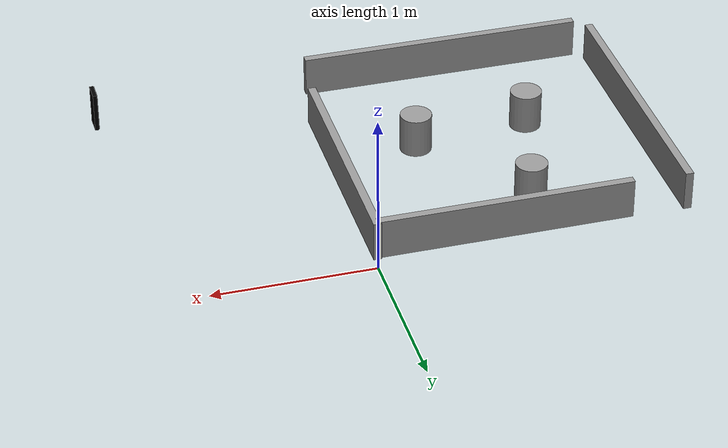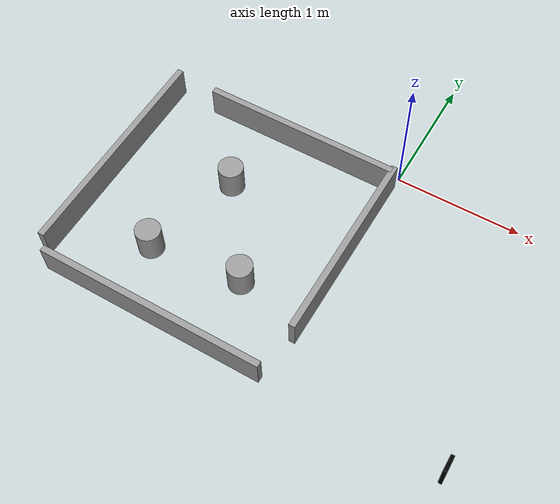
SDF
<sdf version="1.9">
 <world name="default">
  <include><uri>model://turtlebot3_autorace_2020/traffic_light</uri><pose>1.3 -1.95 0 0 0 -1.57</pose></include>
  <model name="tunnel_wall">
   <link name="Wall_1">
    <pose>-0.980783 0.049883 0 0 -0 1.5708</pose>
    <visual name="Wall_1_Visual">
     <pose>0 0 0.125 0 -0 0</pose>
     <geometry><box><size>1.8 0.05 0.25</size></box></geometry>
     <material>
      <script><uri>file://media/materials/scripts/gazebo.material</uri><name>Gazebo/Grey</name></script>
      <ambient>1 1 1 1</ambient>
      <diffuse>0.7 0.7 0.7 1</diffuse>
      <specular>0.01 0.01 0.01 1</specular>
      <emissive>0 0 0 1</emissive>
     </material>
    </visual>
    <collision name="Wall_1_Collision">
     <pose>0 0 0.125 0 -0 0</pose>
     <geometry><box><size>1.8 0.05 0.25</size></box></geometry>
     <surface>
      <friction>
       <ode><mu>1</mu><mu2>1</mu2><fdir1>0 0 0</fdir1><slip1>0</slip1><slip2>0</slip2></ode>
       <torsional>
        <coefficient>1</coefficient>
        <patch_radius>0</patch_radius>
        <surface_radius>0</surface_radius>
        <use_patch_radius>1</use_patch_radius>
        <ode><slip>0</slip></ode>
       </torsional>
      </friction>
      <bounce><restitution_coefficient>0</restitution_coefficient><threshold>1e+06</threshold></bounce>
      <contact>
       <collide_without_contact>0</collide_without_contact>
       <collide_without_contact_bitmask>1</collide_without_contact_bitmask>
       <collide_bitmask>1</collide_bitmask>
       <ode>
        <soft_cfm>0</soft_cfm>
        <soft_erp>0.2</soft_erp>
        <kp>1e+13</kp>
        <kd>1</kd>
        <max_vel>0.01</max_vel>
        <min_depth>0</min_depth>
       </ode>
       <bullet>
        <split_impulse>1</split_impulse>
        <split_impulse_penetration_threshold>-0.01</split_impulse_penetration_threshold>
        <soft_cfm>0</soft_cfm>
        <soft_erp>0.2</soft_erp>
        <kp>1e+13</kp>
        <kd>1</kd>
       </bullet>
      </contact>
     </surface>
    </collision>
   </link>
   <link name="Wall_2">
    <pose>0 -0.935438 0 0 -0 0</pose>
    <visual name="Wall_2_Visual">
     <pose>0 0 0.125 0 -0 0</pose>
     <geometry><box><size>1.8 0.05 0.25</size></box></geometry>
     <material>
      <script><uri>file://media/materials/scripts/gazebo.material</uri><name>Gazebo/Grey</name></script>
      <ambient>1 1 1 1</ambient>
      <diffuse>0.7 0.7 0.7 1</diffuse>
      <specular>0.01 0.01 0.01 1</specular>
      <emissive>0 0 0 1</emissive>
     </material>
    </visual>
    <collision name="Wall_2_Collision">
     <pose>0 0 0.125 0 -0 0</pose>
     <geometry><box><size>1.8 0.05 0.25</size></box></geometry>
     <surface>
      <friction>
       <ode><mu>1</mu><mu2>1</mu2><fdir1>0 0 0</fdir1><slip1>0</slip1><slip2>0</slip2></ode>
       <torsional>
        <coefficient>1</coefficient>
        <patch_radius>0</patch_radius>
        <surface_radius>0</surface_radius>
        <use_patch_radius>1</use_patch_radius>
        <ode><slip>0</slip></ode>
       </torsional>
      </friction>
      <bounce><restitution_coefficient>0</restitution_coefficient><threshold>1e+06</threshold></bounce>
      <contact>
       <collide_without_contact>0</collide_without_contact>
       <collide_without_contact_bitmask>1</collide_without_contact_bitmask>
       <collide_bitmask>1</collide_bitmask>
       <ode>
        <soft_cfm>0</soft_cfm>
        <soft_erp>0.2</soft_erp>
        <kp>1e+13</kp>
        <kd>1</kd>
        <max_vel>0.01</max_vel>
        <min_depth>0</min_depth>
       </ode>
       <bullet>
        <split_impulse>1</split_impulse>
        <split_impulse_penetration_threshold>-0.01</split_impulse_penetration_threshold>
        <soft_cfm>0</soft_cfm>
        <soft_erp>0.2</soft_erp>
        <kp>1e+13</kp>
        <kd>1</kd>
       </bullet>
      </contact>
     </surface>
    </collision>
   </link>
   <link name="Wall_3">
    <pose>0.943396 0.183669 0 0 -0 1.5708</pose>
    <visual name="Wall_3_Visual">
     <pose>0 0 0.125 0 -0 0</pose>
     <geometry><box><size>1.53699 0.05 0.25</size></box></geometry>
     <material>
      <script><uri>file://media/materials/scripts/gazebo.material</uri><name>Gazebo/Grey</name></script>
      <ambient>1 1 1 1</ambient>
      <diffuse>0.7 0.7 0.7 1</diffuse>
      <specular>0.01 0.01 0.01 1</specular>
      <emissive>0 0 0 1</emissive>
     </material>
    </visual>
    <collision name="Wall_3_Collision">
     <pose>0 0 0.125 0 -0 0</pose>
     <geometry><box><size>1.53699 0.05 0.25</size></box></geometry>
     <surface>
      <friction>
       <ode><mu>1</mu><mu2>1</mu2><fdir1>0 0 0</fdir1><slip1>0</slip1><slip2>0</slip2></ode>
       <torsional>
        <coefficient>1</coefficient>
        <patch_radius>0</patch_radius>
        <surface_radius>0</surface_radius>
        <use_patch_radius>1</use_patch_radius>
        <ode><slip>0</slip></ode>
       </torsional>
      </friction>
      <bounce><restitution_coefficient>0</restitution_coefficient><threshold>1e+06</threshold></bounce>
      <contact>
       <collide_without_contact>0</collide_without_contact>
       <collide_without_contact_bitmask>1</collide_without_contact_bitmask>
       <collide_bitmask>1</collide_bitmask>
       <ode>
        <soft_cfm>0</soft_cfm>
        <soft_erp>0.2</soft_erp>
        <kp>1e+13</kp>
        <kd>1</kd>
        <max_vel>0.01</max_vel>
        <min_depth>0</min_depth>
       </ode>
       <bullet>
        <split_impulse>1</split_impulse>
        <split_impulse_penetration_threshold>-0.01</split_impulse_penetration_threshold>
        <soft_cfm>0</soft_cfm>
        <soft_erp>0.2</soft_erp>
        <kp>1e+13</kp>
        <kd>1</kd>
       </bullet>
      </contact>
     </surface>
    </collision>
   </link>
   <link name="Wall_4">
    <pose>0.15 0.915 0 0 -0 3.14159</pose>
    <visual name="Wall_4_Visual">
     <pose>0 0 0.125 0 -0 0</pose>
     <geometry><box><size>1.58 0.05 0.25</size></box></geometry>
     <material>
      <script><uri>file://media/materials/scripts/gazebo.material</uri><name>Gazebo/Grey</name></script>
      <ambient>1 1 1 1</ambient>
      <diffuse>0.7 0.7 0.7 1</diffuse>
      <specular>0.01 0.01 0.01 1</specular>
      <emissive>0 0 0 1</emissive>
     </material>
    </visual>
    <collision name="Wall_4_Collision">
     <pose>0 0 0.125 0 -0 0</pose>
     <geometry><box><size>1.58 0.05 0.25</size></box></geometry>
     <surface>
      <friction>
       <ode><mu>1</mu><mu2>1</mu2><fdir1>0 0 0</fdir1><slip1>0</slip1><slip2>0</slip2></ode>
       <torsional>
        <coefficient>1</coefficient>
        <patch_radius>0</patch_radius>
        <surface_radius>0</surface_radius>
        <use_patch_radius>1</use_patch_radius>
        <ode><slip>0</slip></ode>
       </torsional>
      </friction>
      <bounce><restitution_coefficient>0</restitution_coefficient><threshold>1e+06</threshold></bounce>
      <contact>
       <collide_without_contact>0</collide_without_contact>
       <collide_without_contact_bitmask>1</collide_without_contact_bitmask>
       <collide_bitmask>1</collide_bitmask>
       <ode>
        <soft_cfm>0</soft_cfm>
        <soft_erp>0.2</soft_erp>
        <kp>1e+13</kp>
        <kd>1</kd>
        <max_vel>0.01</max_vel>
        <min_depth>0</min_depth>
       </ode>
       <bullet>
        <split_impulse>1</split_impulse>
        <split_impulse_penetration_threshold>-0.01</split_impulse_penetration_threshold>
        <soft_cfm>0</soft_cfm>
        <soft_erp>0.2</soft_erp>
        <kp>1e+13</kp>
        <kd>1</kd>
       </bullet>
      </contact>
     </surface>
    </collision>
   </link>
   <static>1</static>
   <pose>-0.964699 -1.03574 0 0 -0 0</pose>
  </model>
  <model name="tunnel_obstacle">
   <link name="obstacle_1">
    <pose>0.42322 -0.212034 0.0 0 -0 0</pose>
    <inertial>
     <mass>0.0416663</mass>
     <inertia>
      <ixx>0.00098188</ixx>
      <ixy>0</ixy>
      <ixz>0</ixz>
      <iyy>0.00098188</iyy>
      <iyz>0</iyz>
      <izz>0.00046751</izz>
     </inertia>
    </inertial>
    <visual name="visual">
     <geometry><cylinder><radius>0.1</radius><length>0.25</length></cylinder></geometry>
     <material>
      <lighting>1</lighting>
      <script><uri>file://media/materials/scripts/gazebo.material</uri><name>Gazebo/Grey</name></script>
      <ambient>0.3 0.3 0.3 1</ambient>
      <diffuse>0.7 0.7 0.7 1</diffuse>
      <specular>0.01 0.01 0.01 1</specular>
      <emissive>0 0 0 1</emissive>
      <shader type="pixel"><normal_map>__default__</normal_map></shader>
     </material>
    </visual>
    <collision name="collision">
     <geometry><cylinder><radius>0.1</radius><length>0.46418</length></cylinder></geometry>
     <surface>
      <friction>
       <ode><mu>1</mu><mu2>1</mu2><fdir1>0 0 0</fdir1><slip1>0</slip1><slip2>0</slip2></ode>
       <torsional>
        <coefficient>1</coefficient>
        <patch_radius>0</patch_radius>
        <surface_radius>0</surface_radius>
        <use_patch_radius>1</use_patch_radius>
        <ode><slip>0</slip></ode>
       </torsional>
      </friction>
      <bounce><restitution_coefficient>0</restitution_coefficient><threshold>1e+06</threshold></bounce>
      <contact>
       <collide_without_contact>0</collide_without_contact>
       <collide_without_contact_bitmask>1</collide_without_contact_bitmask>
       <collide_bitmask>1</collide_bitmask>
       <ode>
        <soft_cfm>0</soft_cfm>
        <soft_erp>0.2</soft_erp>
        <kp>1e+13</kp>
        <kd>1</kd>
        <max_vel>0.01</max_vel>
        <min_depth>0</min_depth>
       </ode>
       <bullet>
        <split_impulse>1</split_impulse>
        <split_impulse_penetration_threshold>-0.01</split_impulse_penetration_threshold>
        <soft_cfm>0</soft_cfm>
        <soft_erp>0.2</soft_erp>
        <kp>1e+13</kp>
        <kd>1</kd>
       </bullet>
      </contact>
     </surface>
    </collision>
   </link>
   <link name="obstacle_2">
    <pose>-0.323729 -0.287563 0.0 0 -0 0</pose>
    <inertial>
     <mass>0.0416663</mass>
     <inertia>
      <ixx>0.00098188</ixx>
      <ixy>0</ixy>
      <ixz>0</ixz>
      <iyy>0.00098188</iyy>
      <iyz>0</iyz>
      <izz>0.00046751</izz>
     </inertia>
    </inertial>
    <visual name="visual">
     <geometry><cylinder><radius>0.1</radius><length>0.25</length></cylinder></geometry>
     <material>
      <lighting>1</lighting>
      <script><uri>file://media/materials/scripts/gazebo.material</uri><name>Gazebo/Grey</name></script>
      <ambient>0.3 0.3 0.3 1</ambient>
      <diffuse>0.7 0.7 0.7 1</diffuse>
      <specular>0.01 0.01 0.01 1</specular>
      <emissive>0 0 0 1</emissive>
      <shader type="pixel"><normal_map>__default__</normal_map></shader>
     </material>
    </visual>
    <collision name="collision">
     <geometry><cylinder><radius>0.1</radius><length>0.46418</length></cylinder></geometry>
     <surface>
      <friction>
       <ode><mu>1</mu><mu2>1</mu2><fdir1>0 0 0</fdir1><slip1>0</slip1><slip2>0</slip2></ode>
       <torsional>
        <coefficient>1</coefficient>
        <patch_radius>0</patch_radius>
        <surface_radius>0</surface_radius>
        <use_patch_radius>1</use_patch_radius>
        <ode><slip>0</slip></ode>
       </torsional>
      </friction>
      <bounce><restitution_coefficient>0</restitution_coefficient><threshold>1e+06</threshold></bounce>
      <contact>
       <collide_without_contact>0</collide_without_contact>
       <collide_without_contact_bitmask>1</collide_without_contact_bitmask>
       <collide_bitmask>1</collide_bitmask>
       <ode>
        <soft_cfm>0</soft_cfm>
        <soft_erp>0.2</soft_erp>
        <kp>1e+13</kp>
        <kd>1</kd>
        <max_vel>0.01</max_vel>
        <min_depth>0</min_depth>
       </ode>
       <bullet>
        <split_impulse>1</split_impulse>
        <split_impulse_penetration_threshold>-0.01</split_impulse_penetration_threshold>
        <soft_cfm>0</soft_cfm>
        <soft_erp>0.2</soft_erp>
        <kp>1e+13</kp>
        <kd>1</kd>
       </bullet>
      </contact>
     </surface>
    </collision>
   </link>
   <link name="obstacle_3">
    <pose>-0.099492 0.499594 0.0 0 -0 0</pose>
    <inertial>
     <mass>0.0416663</mass>
     <inertia>
      <ixx>0.00098188</ixx>
      <ixy>0</ixy>
      <ixz>0</ixz>
      <iyy>0.00098188</iyy>
      <iyz>0</iyz>
      <izz>0.00046751</izz>
     </inertia>
    </inertial>
    <visual name="visual">
     <geometry><cylinder><radius>0.1</radius><length>0.25</length></cylinder></geometry>
     <material>
      <lighting>1</lighting>
      <script><uri>file://media/materials/scripts/gazebo.material</uri><name>Gazebo/Grey</name></script>
      <ambient>0.3 0.3 0.3 1</ambient>
      <diffuse>0.7 0.7 0.7 1</diffuse>
      <specular>0.01 0.01 0.01 1</specular>
      <emissive>0 0 0 1</emissive>
      <shader type="pixel"><normal_map>__default__</normal_map></shader>
     </material>
    </visual>
    <collision name="collision">
     <geometry><cylinder><radius>0.1</radius><length>0.46418</length></cylinder></geometry>
     <surface>
      <friction>
       <ode><mu>1</mu><mu2>1</mu2><fdir1>0 0 0</fdir1><slip1>0</slip1><slip2>0</slip2></ode>
       <torsional>
        <coefficient>1</coefficient>
        <patch_radius>0</patch_radius>
        <surface_radius>0</surface_radius>
        <use_patch_radius>1</use_patch_radius>
        <ode><slip>0</slip></ode>
       </torsional>
      </friction>
      <bounce><restitution_coefficient>0</restitution_coefficient><threshold>1e+06</threshold></bounce>
      <contact>
       <collide_without_contact>0</collide_without_contact>
       <collide_without_contact_bitmask>1</collide_without_contact_bitmask>
       <collide_bitmask>1</collide_bitmask>
       <ode>
        <soft_cfm>0</soft_cfm>
        <soft_erp>0.2</soft_erp>
        <kp>1e+13</kp>
        <kd>1</kd>
        <max_vel>0.01</max_vel>
        <min_depth>0</min_depth>
       </ode>
       <bullet>
        <split_impulse>1</split_impulse>
        <split_impulse_penetration_threshold>-0.01</split_impulse_penetration_threshold>
        <soft_cfm>0</soft_cfm>
        <soft_erp>0.2</soft_erp>
        <kp>1e+13</kp>
        <kd>1</kd>
       </bullet>
      </contact>
     </surface>
    </collision>
   </link>
   <static>1</static>
   <pose>-1.04145 -1.12671 0 0 -0 0</pose>
  </model>
 </world>
</sdf>
